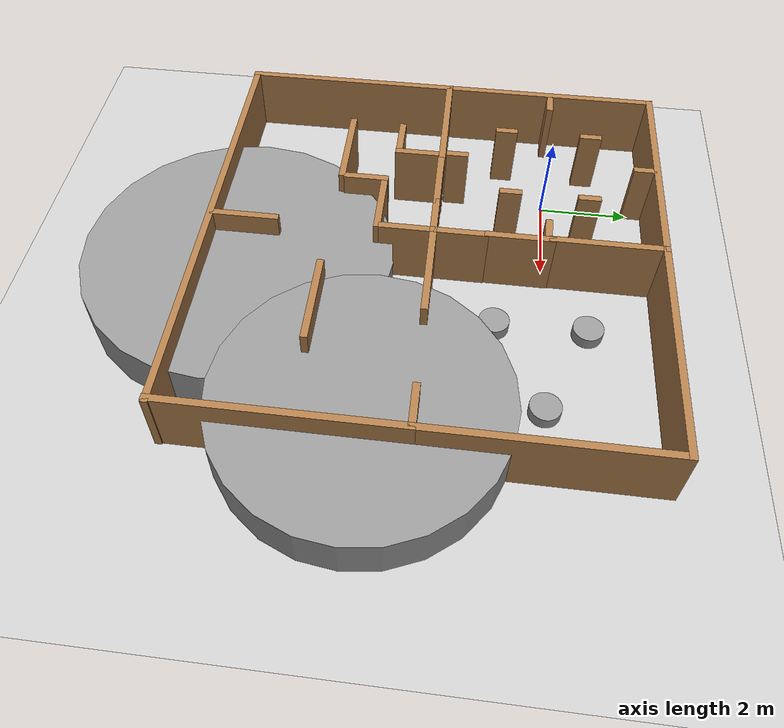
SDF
<sdf version="1.6">
 <world name="default">
  <light name="sun" type="directional">
   <pose>0 0 10 0 -0 0</pose>
   <diffuse>0.8 0.8 0.8 1</diffuse>
   <specular>0.2 0.2 0.2 1</specular>
   <attenuation>
    <range>1000</range>
    <constant>0.9</constant>
    <linear>0.01</linear>
    <quadratic>0.001</quadratic>
   </attenuation>
   <direction>-0.5 0.1 -0.9</direction>
  </light>
  <model name="ground_plane">
   <static>1</static>
   <link name="link">
    <collision name="collision">
     <geometry><plane><normal>0 0 1</normal><size>100 100</size></plane></geometry>
     <surface><friction><ode><mu>100</mu><mu2>50</mu2></ode></friction></surface>
    </collision>
    <visual name="visual">
     <cast_shadows>0</cast_shadows>
     <geometry><plane><normal>0 0 1</normal><size>100 100</size></plane></geometry>
     <material>
      <script><uri>file://media/materials/scripts/gazebo.material</uri><name>Gazebo/Grey</name></script>
     </material>
    </visual>
   </link>
  </model>
  <physics name="default_physics" default="0" type="ode">
   <real_time_update_rate>1000</real_time_update_rate>
   <max_step_size>0.001</max_step_size>
   <real_time_factor>1</real_time_factor>
   <ode>
    <solver>
     <type>quick</type>
     <iters>150</iters>
     <precon_iters>0</precon_iters>
     <sor>1.4</sor>
     <use_dynamic_moi_rescaling>1</use_dynamic_moi_rescaling>
    </solver>
    <constraints>
     <cfm>1e-05</cfm>
     <erp>0.2</erp>
     <contact_max_correcting_vel>2000</contact_max_correcting_vel>
     <contact_surface_layer>0.01</contact_surface_layer>
    </constraints>
   </ode>
  </physics>
  <scene><ambient>0.4 0.4 0.4 1</ambient><background>0.7 0.7 0.7 1</background><shadows>1</shadows></scene>
  <gravity>0 0 -9.8</gravity>
  <magnetic_field>6e-06 2.3e-05 -4.2e-05</magnetic_field>
  <atmosphere type="adiabatic"/>
  <spherical_coordinates>
   <surface_model>EARTH_WGS84</surface_model>
   <latitude_deg>0</latitude_deg>
   <longitude_deg>0</longitude_deg>
   <elevation>0</elevation>
   <heading_deg>0</heading_deg>
  </spherical_coordinates>
  <audio><device>default</device></audio>
  <model name="new_envi">
   <pose>2.36889 -2.44064 0 0 -0 0</pose>
   <link name="Wall_14">
    <collision name="Wall_14_Collision">
     <geometry><box><size>5 0.15 1.5</size></box></geometry>
     <pose>0 0 0.75 0 -0 0</pose>
    </collision>
    <visual name="Wall_14_Visual">
     <pose>0 0 0.75 0 -0 0</pose>
     <geometry><box><size>5 0.15 1.5</size></box></geometry>
     <material>
      <script><uri>file://media/materials/scripts/gazebo.material</uri><name>Gazebo/Wood</name></script>
      <ambient>1 1 1 1</ambient>
     </material>
     <meta><layer>0</layer></meta>
    </visual>
    <pose>-2.439 4.85 0 0 -0 0</pose>
   </link>
   <link name="Wall_16">
    <collision name="Wall_16_Collision">
     <geometry><box><size>5 0.15 1.5</size></box></geometry>
     <pose>0 0 0.75 0 -0 0</pose>
    </collision>
    <visual name="Wall_16_Visual">
     <pose>0 0 0.75 0 -0 0</pose>
     <geometry><box><size>5 0.15 1.5</size></box></geometry>
     <material>
      <script><uri>file://media/materials/scripts/gazebo.material</uri><name>Gazebo/Wood</name></script>
      <ambient>1 1 1 1</ambient>
     </material>
     <meta><layer>0</layer></meta>
    </visual>
    <pose>-4.864 2.425 0 0 -0 -1.5708</pose>
   </link>
   <link name="Wall_18">
    <collision name="Wall_18_Collision">
     <geometry><box><size>3 0.15 1.5</size></box></geometry>
     <pose>0 0 0.75 0 -0 0</pose>
    </collision>
    <visual name="Wall_18_Visual">
     <pose>0 0 0.75 0 -0 0</pose>
     <geometry><box><size>3 0.15 1.5</size></box></geometry>
     <material>
      <script><uri>file://media/materials/scripts/gazebo.material</uri><name>Gazebo/Wood</name></script>
      <ambient>1 1 1 1</ambient>
     </material>
     <meta><layer>0</layer></meta>
    </visual>
    <pose>-3.439 -0 0 0 -0 0</pose>
   </link>
   <link name="Wall_20">
    <collision name="Wall_20_Collision">
     <geometry><box><size>2.5 0.15 1.5</size></box></geometry>
     <pose>0 0 0.75 0 -0 0</pose>
    </collision>
    <visual name="Wall_20_Visual">
     <pose>0 0 0.75 0 -0 0</pose>
     <geometry><box><size>2.5 0.15 1.5</size></box></geometry>
     <material>
      <script><uri>file://media/materials/scripts/gazebo.material</uri><name>Gazebo/Wood</name></script>
      <ambient>1 1 1 1</ambient>
     </material>
     <meta><layer>0</layer></meta>
    </visual>
    <pose>-0.014 3.675 0 0 -0 -1.5708</pose>
   </link>
   <link name="Wall_22">
    <collision name="Wall_22_Collision">
     <geometry><box><size>1.25 0.15 1.5</size></box></geometry>
     <pose>0 0 0.75 0 -0 0</pose>
    </collision>
    <visual name="Wall_22_Visual">
     <pose>0 0 0.75 0 -0 0</pose>
     <geometry><box><size>1.25 0.15 1.5</size></box></geometry>
     <material>
      <script><uri>file://media/materials/scripts/gazebo.material</uri><name>Gazebo/Wood</name></script>
      <ambient>1 1 1 1</ambient>
     </material>
     <meta><layer>0</layer></meta>
    </visual>
    <pose>0.019 0.537 0 0 -0 -1.5708</pose>
   </link>
   <link name="Wall_23">
    <collision name="Wall_23_Collision">
     <geometry><box><size>1 0.15 1.5</size></box></geometry>
     <pose>0 0 0.75 0 -0 0</pose>
    </collision>
    <visual name="Wall_23_Visual">
     <pose>0 0 0.75 0 -0 0</pose>
     <geometry><box><size>1 0.15 1.5</size></box></geometry>
     <material>
      <script><uri>file://media/materials/scripts/gazebo.material</uri><name>Gazebo/Wood</name></script>
      <ambient>1 1 1 1</ambient>
     </material>
     <meta><layer>0</layer></meta>
    </visual>
    <pose>-0.406 -0.013 0 0 -0 3.14159</pose>
   </link>
   <link name="Wall_27">
    <collision name="Wall_27_Collision">
     <geometry><box><size>5 0.15 1.5</size></box></geometry>
     <pose>0 0 0.75 0 -0 0</pose>
    </collision>
    <visual name="Wall_27_Visual">
     <pose>0 0 0.75 0 -0 0</pose>
     <geometry><box><size>5 0.15 1.5</size></box></geometry>
     <material>
      <script><uri>file://media/materials/scripts/gazebo.material</uri><name>Gazebo/Wood</name></script>
      <ambient>1 1 1 1</ambient>
     </material>
     <meta><layer>0</layer></meta>
    </visual>
    <pose>2.411 4.85 0 0 -0 0</pose>
   </link>
   <link name="Wall_28">
    <collision name="Wall_28_Collision">
     <geometry><box><size>5 0.15 1.5</size></box></geometry>
     <pose>0 0 0.75 0 -0 0</pose>
    </collision>
    <visual name="Wall_28_Visual">
     <pose>0 0 0.75 0 -0 0</pose>
     <geometry><box><size>5 0.15 1.5</size></box></geometry>
     <material>
      <script><uri>file://media/materials/scripts/gazebo.material</uri><name>Gazebo/Wood</name></script>
      <ambient>1 1 1 1</ambient>
     </material>
     <meta><layer>0</layer></meta>
    </visual>
    <pose>4.836 2.425 0 0 -0 -1.5708</pose>
   </link>
   <link name="Wall_29">
    <collision name="Wall_29_Collision">
     <geometry><box><size>1 0.15 1.5</size></box></geometry>
     <pose>0 0 0.75 0 -0 0</pose>
    </collision>
    <visual name="Wall_29_Visual">
     <pose>0 0 0.75 0 -0 0</pose>
     <geometry><box><size>1 0.15 1.5</size></box></geometry>
     <material>
      <script><uri>file://media/materials/scripts/gazebo.material</uri><name>Gazebo/Wood</name></script>
      <ambient>1 1 1 1</ambient>
     </material>
     <meta><layer>0</layer></meta>
    </visual>
    <pose>4.411 -0 0 0 -0 3.14159</pose>
   </link>
   <link name="Wall_31">
    <collision name="Wall_31_Collision">
     <geometry><box><size>2.25 0.15 1.5</size></box></geometry>
     <pose>0 0 0.75 0 -0 0</pose>
    </collision>
    <visual name="Wall_31_Visual">
     <pose>0 0 0.75 0 -0 0</pose>
     <geometry><box><size>2.25 0.15 1.5</size></box></geometry>
     <material>
      <script><uri>file://media/materials/scripts/gazebo.material</uri><name>Gazebo/Wood</name></script>
      <ambient>1 1 1 1</ambient>
     </material>
     <meta><layer>0</layer></meta>
    </visual>
    <pose>1.069 -0.013 0 0 -0 0</pose>
   </link>
   <link name="Wall_35">
    <collision name="Wall_35_Collision">
     <geometry><box><size>9.75 0.15 1.5</size></box></geometry>
     <pose>0 0 0.75 0 -0 0</pose>
    </collision>
    <visual name="Wall_35_Visual">
     <pose>0 0 0.75 0 -0 0</pose>
     <geometry><box><size>9.75 0.15 1.5</size></box></geometry>
     <material>
      <script><uri>file://media/materials/scripts/gazebo.material</uri><name>Gazebo/Wood</name></script>
      <ambient>1 1 1 1</ambient>
     </material>
     <meta><layer>0</layer></meta>
    </visual>
    <pose>0.064 -4.835 0 0 -0 0</pose>
   </link>
   <link name="Wall_37">
    <collision name="Wall_37_Collision">
     <geometry><box><size>5 0.15 1.5</size></box></geometry>
     <pose>0 0 0.75 0 -0 0</pose>
    </collision>
    <visual name="Wall_37_Visual">
     <pose>0 0 0.75 0 -0 0</pose>
     <geometry><box><size>5 0.15 1.5</size></box></geometry>
     <material>
      <script><uri>file://media/materials/scripts/gazebo.material</uri><name>Gazebo/Wood</name></script>
      <ambient>1 1 1 1</ambient>
     </material>
     <meta><layer>0</layer></meta>
    </visual>
    <pose>4.836 -2.425 0 0 -0 -1.5708</pose>
   </link>
   <link name="Wall_39">
    <collision name="Wall_39_Collision">
     <geometry><box><size>5 0.15 1.5</size></box></geometry>
     <pose>0 0 0.75 0 -0 0</pose>
    </collision>
    <visual name="Wall_39_Visual">
     <pose>0 0 0.75 0 -0 0</pose>
     <geometry><box><size>5 0.15 1.5</size></box></geometry>
     <material>
      <script><uri>file://media/materials/scripts/gazebo.material</uri><name>Gazebo/Wood</name></script>
      <ambient>1 1 1 1</ambient>
     </material>
     <meta><layer>0</layer></meta>
    </visual>
    <pose>-4.864 -2.425 0 0 -0 -1.5708</pose>
   </link>
   <link name="Wall_41">
    <collision name="Wall_41_Collision">
     <geometry><box><size>1.25 0.15 1.5</size></box></geometry>
     <pose>0 0 0.75 0 -0 0</pose>
    </collision>
    <visual name="Wall_41_Visual">
     <pose>0 0 0.75 0 -0 0</pose>
     <geometry><box><size>1.25 0.15 1.5</size></box></geometry>
     <material>
      <script><uri>file://media/materials/scripts/gazebo.material</uri><name>Gazebo/Wood</name></script>
      <ambient>1 1 1 1</ambient>
     </material>
     <meta><layer>0</layer></meta>
    </visual>
    <pose>0.019 -0.563 0 0 -0 -1.5708</pose>
   </link>
   <link name="Wall_43">
    <collision name="Wall_43_Collision">
     <geometry><box><size>1.5 0.15 1.5</size></box></geometry>
     <pose>0 0 0.75 0 -0 0</pose>
    </collision>
    <visual name="Wall_43_Visual">
     <pose>0 0 0.75 0 -0 0</pose>
     <geometry><box><size>1.5 0.15 1.5</size></box></geometry>
     <material>
      <script><uri>file://media/materials/scripts/gazebo.material</uri><name>Gazebo/Wood</name></script>
      <ambient>1 1 1 1</ambient>
     </material>
     <meta><layer>0</layer></meta>
    </visual>
    <pose>0.064 -4.086 0 0 -0 -1.5708</pose>
   </link>
   <static>1</static>
  </model>
  <model name="c0">
   <link name="link">
    <inertial>
     <mass>1</mass>
     <inertia><ixx>0.145833</ixx><ixy>0</ixy><ixz>0</ixz><iyy>0.145833</iyy><iyz>0</iyz><izz>0.125</izz></inertia>
    </inertial>
    <visual name="visual">
     <geometry><cylinder><radius>0.326555</radius><length>0.51474</length></cylinder></geometry>
     <material>
      <script><name>Gazebo/Grey</name><uri>file://media/materials/scripts/gazebo.material</uri></script>
     </material>
    </visual>
    <collision name="collision">
     <geometry><cylinder><radius>0.326555</radius><length>0.51474</length></cylinder></geometry>
     <surface>
      <friction>
       <ode><mu>1</mu><mu2>1</mu2><fdir1>0 0 0</fdir1><slip1>0</slip1><slip2>0</slip2></ode>
       <torsional>
        <coefficient>1</coefficient>
        <patch_radius>0</patch_radius>
        <surface_radius>0</surface_radius>
        <use_patch_radius>1</use_patch_radius>
        <ode><slip>0</slip></ode>
       </torsional>
      </friction>
      <bounce><restitution_coefficient>0</restitution_coefficient><threshold>1e+06</threshold></bounce>
      <contact>
       <collide_without_contact>0</collide_without_contact>
       <collide_without_contact_bitmask>1</collide_without_contact_bitmask>
       <collide_bitmask>1</collide_bitmask>
       <ode>
        <soft_cfm>0</soft_cfm>
        <soft_erp>0.2</soft_erp>
        <kp>1e+13</kp>
        <kd>1</kd>
        <max_vel>0.01</max_vel>
        <min_depth>0</min_depth>
       </ode>
       <bullet>
        <split_impulse>1</split_impulse>
        <split_impulse_penetration_threshold>-0.01</split_impulse_penetration_threshold>
        <soft_cfm>0</soft_cfm>
        <soft_erp>0.2</soft_erp>
        <kp>1e+13</kp>
        <kd>1</kd>
       </bullet>
      </contact>
     </surface>
    </collision>
   </link>
   <static>1</static>
   <pose>5.70012 0.083019 0 0 -0 0</pose>
  </model>
  <model name="c0_0">
   <link name="link">
    <inertial>
     <mass>1</mass>
     <inertia><ixx>0.145833</ixx><ixy>0</ixy><ixz>0</ixz><iyy>0.145833</iyy><iyz>0</iyz><izz>0.125</izz></inertia>
    </inertial>
    <visual name="visual">
     <geometry><cylinder><radius>0.326555</radius><length>0.51474</length></cylinder></geometry>
     <material>
      <script><name>Gazebo/Grey</name><uri>file://media/materials/scripts/gazebo.material</uri></script>
     </material>
    </visual>
    <collision name="collision">
     <geometry><cylinder><radius>0.326555</radius><length>0.51474</length></cylinder></geometry>
     <surface>
      <friction>
       <ode><mu>1</mu><mu2>1</mu2><fdir1>0 0 0</fdir1><slip1>0</slip1><slip2>0</slip2></ode>
       <torsional>
        <coefficient>1</coefficient>
        <patch_radius>0</patch_radius>
        <surface_radius>0</surface_radius>
        <use_patch_radius>1</use_patch_radius>
        <ode><slip>0</slip></ode>
       </torsional>
      </friction>
      <bounce><restitution_coefficient>0</restitution_coefficient><threshold>1e+06</threshold></bounce>
      <contact>
       <collide_without_contact>0</collide_without_contact>
       <collide_without_contact_bitmask>1</collide_without_contact_bitmask>
       <collide_bitmask>1</collide_bitmask>
       <ode>
        <soft_cfm>0</soft_cfm>
        <soft_erp>0.2</soft_erp>
        <kp>1e+13</kp>
        <kd>1</kd>
        <max_vel>0.01</max_vel>
        <min_depth>0</min_depth>
       </ode>
       <bullet>
        <split_impulse>1</split_impulse>
        <split_impulse_penetration_threshold>-0.01</split_impulse_penetration_threshold>
        <soft_cfm>0</soft_cfm>
        <soft_erp>0.2</soft_erp>
        <kp>1e+13</kp>
        <kd>1</kd>
       </bullet>
      </contact>
     </surface>
    </collision>
   </link>
   <static>1</static>
   <pose>3.67678 -0.998554 0 0 -0 0</pose>
  </model>
  <model name="c0_2">
   <link name="link">
    <inertial>
     <mass>1</mass>
     <inertia><ixx>0.145833</ixx><ixy>0</ixy><ixz>0</ixz><iyy>0.145833</iyy><iyz>0</iyz><izz>0.125</izz></inertia>
    </inertial>
    <visual name="visual">
     <geometry><cylinder><radius>0.326555</radius><length>0.51474</length></cylinder></geometry>
     <material>
      <script><name>Gazebo/Grey</name><uri>file://media/materials/scripts/gazebo.material</uri></script>
     </material>
    </visual>
    <collision name="collision">
     <geometry><cylinder><radius>0.326555</radius><length>0.51474</length></cylinder></geometry>
     <surface>
      <friction>
       <ode><mu>1</mu><mu2>1</mu2><fdir1>0 0 0</fdir1><slip1>0</slip1><slip2>0</slip2></ode>
       <torsional>
        <coefficient>1</coefficient>
        <patch_radius>0</patch_radius>
        <surface_radius>0</surface_radius>
        <use_patch_radius>1</use_patch_radius>
        <ode><slip>0</slip></ode>
       </torsional>
      </friction>
      <bounce><restitution_coefficient>0</restitution_coefficient><threshold>1e+06</threshold></bounce>
      <contact>
       <collide_without_contact>0</collide_without_contact>
       <collide_without_contact_bitmask>1</collide_without_contact_bitmask>
       <collide_bitmask>1</collide_bitmask>
       <ode>
        <soft_cfm>0</soft_cfm>
        <soft_erp>0.2</soft_erp>
        <kp>1e+13</kp>
        <kd>1</kd>
        <max_vel>0.01</max_vel>
        <min_depth>0</min_depth>
       </ode>
       <bullet>
        <split_impulse>1</split_impulse>
        <split_impulse_penetration_threshold>-0.01</split_impulse_penetration_threshold>
        <soft_cfm>0</soft_cfm>
        <soft_erp>0.2</soft_erp>
        <kp>1e+13</kp>
        <kd>1</kd>
       </bullet>
      </contact>
     </surface>
    </collision>
   </link>
   <static>1</static>
   <pose>3.66158 0.979241 0 0 -0 0</pose>
  </model>
  <model name="woll_ho">
   <pose>1.71026 -3.65564 0 0 -0 0</pose>
   <link name="Wall_47">
    <collision name="Wall_47_Collision">
     <geometry><box><size>1.5 0.15 1.5</size></box></geometry>
     <pose>0 0 0.75 0 -0 0</pose>
    </collision>
    <visual name="Wall_47_Visual">
     <pose>0 0 0.75 0 -0 0</pose>
     <geometry><box><size>1.5 0.15 1.5</size></box></geometry>
     <material>
      <script><uri>file://media/materials/scripts/gazebo.material</uri><name>Gazebo/Wood</name></script>
      <ambient>1 1 1 1</ambient>
     </material>
     <meta><layer>0</layer></meta>
    </visual>
    <pose>0 0 0 0 -0 3.14159</pose>
   </link>
   <static>1</static>
  </model>
  <model name="wall_v">
   <pose>-0.02525 -4.62227 0 0 -0 0</pose>
   <link name="Wall_43">
    <collision name="Wall_43_Collision">
     <geometry><box><size>2 0.15 1.5</size></box></geometry>
     <pose>0 0 0.75 0 -0 0</pose>
    </collision>
    <visual name="Wall_43_Visual">
     <pose>0 0 0.75 0 -0 0</pose>
     <geometry><box><size>2 0.15 1.5</size></box></geometry>
     <material>
      <script><uri>file://media/materials/scripts/gazebo.material</uri><name>Gazebo/Wood</name></script>
      <ambient>1 1 1 1</ambient>
     </material>
     <meta><layer>0</layer></meta>
    </visual>
   </link>
   <static>1</static>
  </model>
  <model name="HO">
   <pose>0.940383 -4.0765 0 0 -0 0</pose>
   <link name="Wall_54">
    <collision name="Wall_54_Collision">
     <geometry><box><size>1 0.15 1.5</size></box></geometry>
     <pose>0 0 0.75 0 -0 0</pose>
    </collision>
    <visual name="Wall_54_Visual">
     <pose>0 0 0.75 0 -0 0</pose>
     <geometry><box><size>1 0.15 1.5</size></box></geometry>
     <material>
      <script><uri>file://media/materials/scripts/gazebo.material</uri><name>Gazebo/Wood</name></script>
      <ambient>1 1 1 1</ambient>
     </material>
     <meta><layer>0</layer></meta>
    </visual>
    <pose>0 0 0 0 -0 -1.5708</pose>
   </link>
   <static>1</static>
  </model>
  <model name="HO_5">
   <pose>-0.01716 -3.01957 0 0 -0 0</pose>
   <link name="Wall_54">
    <collision name="Wall_54_Collision">
     <geometry><box><size>1 0.15 1.5</size></box></geometry>
     <pose>0 0 0.75 0 -0 0</pose>
    </collision>
    <visual name="Wall_54_Visual">
     <pose>0 0 0.75 0 -0 0</pose>
     <geometry><box><size>1 0.15 1.5</size></box></geometry>
     <material>
      <script><uri>file://media/materials/scripts/gazebo.material</uri><name>Gazebo/Wood</name></script>
      <ambient>1 1 1 1</ambient>
     </material>
     <meta><layer>0</layer></meta>
    </visual>
    <pose>0 0 0 0 -0 -1.5708</pose>
   </link>
   <static>1</static>
  </model>
  <model name="V_2">
   <pose>-0.468482 -3.43941 0 0 -0 0</pose>
   <link name="Wall_48">
    <collision name="Wall_48_Collision">
     <geometry><box><size>1 0.15 1.5</size></box></geometry>
     <pose>0 0 0.75 0 -0 0</pose>
    </collision>
    <visual name="Wall_48_Visual">
     <pose>0 0 0.75 0 -0 0</pose>
     <geometry><box><size>1 0.15 1.5</size></box></geometry>
     <material>
      <script><uri>file://media/materials/scripts/gazebo.material</uri><name>Gazebo/Wood</name></script>
      <ambient>1 1 1 1</ambient>
     </material>
     <meta><layer>0</layer></meta>
    </visual>
   </link>
   <static>1</static>
  </model>
  <model name="wall_v_0">
   <pose>4.52756 -4.67997 0 0 -0 0</pose>
   <link name="Wall_43">
    <collision name="Wall_43_Collision">
     <geometry><box><size>2 0.15 1.5</size></box></geometry>
     <pose>0 0 0.75 0 -0 0</pose>
    </collision>
    <visual name="Wall_43_Visual">
     <pose>0 0 0.75 0 -0 0</pose>
     <geometry><box><size>2 0.15 1.5</size></box></geometry>
     <material>
      <script><uri>file://media/materials/scripts/gazebo.material</uri><name>Gazebo/Wood</name></script>
      <ambient>1 1 1 1</ambient>
     </material>
     <meta><layer>0</layer></meta>
    </visual>
   </link>
   <static>1</static>
  </model>
  <model name="unit_cylinder">
   <pose>6.36435 -3.47038 0.5 0 -0 4.2e-05</pose>
   <link name="link">
    <inertial>
     <mass>1</mass>
     <inertia><ixx>0.145833</ixx><ixy>0</ixy><ixz>0</ixz><iyy>0.145833</iyy><iyz>0</iyz><izz>0.125</izz></inertia>
    </inertial>
    <collision name="collision">
     <geometry><cylinder><radius>2.99513</radius><length>1</length></cylinder></geometry>
    </collision>
    <visual name="visual">
     <geometry><cylinder><radius>2.99513</radius><length>1</length></cylinder></geometry>
     <material>
      <script><name>Gazebo/Grey</name><uri>file://media/materials/scripts/gazebo.material</uri></script>
     </material>
    </visual>
   </link>
  </model>
  <model name="unit_cylinder_0">
   <pose>3.02222 -6.58528 0.49999 -8e-06 8e-06 1.9e-05</pose>
   <link name="link">
    <inertial>
     <mass>1</mass>
     <inertia><ixx>0.145833</ixx><ixy>0</ixy><ixz>0</ixz><iyy>0.145833</iyy><iyz>0</iyz><izz>0.125</izz></inertia>
    </inertial>
    <collision name="collision">
     <geometry><cylinder><radius>3.34934</radius><length>1</length></cylinder></geometry>
    </collision>
    <visual name="visual">
     <geometry><cylinder><radius>3.34934</radius><length>1</length></cylinder></geometry>
     <material>
      <script><name>Gazebo/Grey</name><uri>file://media/materials/scripts/gazebo.material</uri></script>
     </material>
    </visual>
   </link>
  </model>
  <model name="woll_h">
   <pose>2.37328 -0.619041 0 0 -0 0</pose>
   <link name="Wall_45">
    <collision name="Wall_45_Collision">
     <geometry><box><size>1.5 0.15 1.5</size></box></geometry>
     <pose>0 0 0.75 0 -0 0</pose>
    </collision>
    <visual name="Wall_45_Visual">
     <pose>0 0 0.75 0 -0 0</pose>
     <geometry><box><size>1.5 0.15 1.5</size></box></geometry>
     <material>
      <script><uri>file://media/materials/scripts/gazebo.material</uri><name>Gazebo/Wood</name></script>
      <ambient>1 1 1 1</ambient>
     </material>
     <meta><layer>0</layer></meta>
    </visual>
    <pose>0 0 0 0 -0 1.5708</pose>
   </link>
   <static>1</static>
  </model>
  <model name="woll_ho_0">
   <pose>0.848718 -2.45317 0 0 -0 0</pose>
   <link name="Wall_47">
    <collision name="Wall_47_Collision">
     <geometry><box><size>1.5 0.15 1.5</size></box></geometry>
     <pose>0 0 0.75 0 -0 0</pose>
    </collision>
    <visual name="Wall_47_Visual">
     <pose>0 0 0.75 0 -0 0</pose>
     <geometry><box><size>1.5 0.15 1.5</size></box></geometry>
     <material>
      <script><uri>file://media/materials/scripts/gazebo.material</uri><name>Gazebo/Wood</name></script>
      <ambient>1 1 1 1</ambient>
     </material>
     <meta><layer>0</layer></meta>
    </visual>
    <pose>0 0 0 0 -0 3.14159</pose>
   </link>
   <static>1</static>
  </model>
  <light name="user_point_light_0" type="point">
   <pose>2.24604 2.39758 1 0 -0 0</pose>
   <diffuse>0.5 0.5 0.5 1</diffuse>
   <specular>0.1 0.1 0.1 1</specular>
   <attenuation>
    <range>20</range>
    <constant>0.5</constant>
    <linear>0.01</linear>
    <quadratic>0.001</quadratic>
   </attenuation>
   <cast_shadows>0</cast_shadows>
   <direction>0 0 -1</direction>
  </light>
  <model name="litlle">
   <pose>1.02594 -0.853853 0 0 -0 0</pose>
   <link name="Wall_4">
    <collision name="Wall_4_Collision">
     <geometry><box><size>0.5 0.15 1.5</size></box></geometry>
     <pose>0 0 0.75 0 -0 0</pose>
    </collision>
    <visual name="Wall_4_Visual">
     <pose>0 0 0.75 0 -0 0</pose>
     <geometry><box><size>0.5 0.15 1.5</size></box></geometry>
     <material>
      <script><uri>file://media/materials/scripts/gazebo.material</uri><name>Gazebo/Wood</name></script>
      <ambient>1 1 1 1</ambient>
     </material>
     <meta><layer>0</layer></meta>
    </visual>
    <pose>0 0 0 0 -0 -1.5708</pose>
   </link>
   <static>1</static>
  </model>
  <model name="litlle_0">
   <pose>1.02628 0.873399 0 0 -0 0</pose>
   <link name="Wall_4">
    <collision name="Wall_4_Collision">
     <geometry><box><size>0.5 0.15 1.5</size></box></geometry>
     <pose>0 0 0.75 0 -0 0</pose>
    </collision>
    <visual name="Wall_4_Visual">
     <pose>0 0 0.75 0 -0 0</pose>
     <geometry><box><size>0.5 0.15 1.5</size></box></geometry>
     <material>
      <script><uri>file://media/materials/scripts/gazebo.material</uri><name>Gazebo/Wood</name></script>
      <ambient>1 1 1 1</ambient>
     </material>
     <meta><layer>0</layer></meta>
    </visual>
    <pose>0 0 0 0 -0 -1.5708</pose>
   </link>
   <static>1</static>
  </model>
  <model name="litlle_1">
   <pose>-0.069332 -2.09393 0 0 -0 0</pose>
   <link name="Wall_4">
    <collision name="Wall_4_Collision">
     <geometry><box><size>0.5 0.15 1.5</size></box></geometry>
     <pose>0 0 0.75 0 -0 0</pose>
    </collision>
    <visual name="Wall_4_Visual">
     <pose>0 0 0.75 0 -0 0</pose>
     <geometry><box><size>0.5 0.15 1.5</size></box></geometry>
     <material>
      <script><uri>file://media/materials/scripts/gazebo.material</uri><name>Gazebo/Wood</name></script>
      <ambient>1 1 1 1</ambient>
     </material>
     <meta><layer>0</layer></meta>
    </visual>
    <pose>0 0 0 0 -0 -1.5708</pose>
   </link>
   <static>1</static>
  </model>
  <model name="litlle_2">
   <pose>-0.029778 2.13516 0 0 -0 0</pose>
   <link name="Wall_4">
    <collision name="Wall_4_Collision">
     <geometry><box><size>0.5 0.15 1.5</size></box></geometry>
     <pose>0 0 0.75 0 -0 0</pose>
    </collision>
    <visual name="Wall_4_Visual">
     <pose>0 0 0.75 0 -0 0</pose>
     <geometry><box><size>0.5 0.15 1.5</size></box></geometry>
     <material>
      <script><uri>file://media/materials/scripts/gazebo.material</uri><name>Gazebo/Wood</name></script>
      <ambient>1 1 1 1</ambient>
     </material>
     <meta><layer>0</layer></meta>
    </visual>
    <pose>0 0 0 0 -0 -1.5708</pose>
   </link>
   <static>1</static>
  </model>
  <model name="litlle_3">
   <pose>-1.03303 -0.992082 0 0 -0 0</pose>
   <link name="Wall_4">
    <collision name="Wall_4_Collision">
     <geometry><box><size>0.5 0.15 1.5</size></box></geometry>
     <pose>0 0 0.75 0 -0 0</pose>
    </collision>
    <visual name="Wall_4_Visual">
     <pose>0 0 0.75 0 -0 0</pose>
     <geometry><box><size>0.5 0.15 1.5</size></box></geometry>
     <material>
      <script><uri>file://media/materials/scripts/gazebo.material</uri><name>Gazebo/Wood</name></script>
      <ambient>1 1 1 1</ambient>
     </material>
     <meta><layer>0</layer></meta>
    </visual>
    <pose>0 0 0 0 -0 -1.5708</pose>
   </link>
   <static>1</static>
  </model>
  <model name="litlle_4">
   <pose>-1.03912 0.963382 0 0 -0 0</pose>
   <link name="Wall_4">
    <collision name="Wall_4_Collision">
     <geometry><box><size>0.5 0.15 1.5</size></box></geometry>
     <pose>0 0 0.75 0 -0 0</pose>
    </collision>
    <visual name="Wall_4_Visual">
     <pose>0 0 0.75 0 -0 0</pose>
     <geometry><box><size>0.5 0.15 1.5</size></box></geometry>
     <material>
      <script><uri>file://media/materials/scripts/gazebo.material</uri><name>Gazebo/Wood</name></script>
      <ambient>1 1 1 1</ambient>
     </material>
     <meta><layer>0</layer></meta>
    </visual>
    <pose>0 0 0 0 -0 -1.5708</pose>
   </link>
   <static>1</static>
  </model>
  <model name="litlle_5">
   <pose>-2.16869 0.022754 0 0 0 -1.58946</pose>
   <link name="Wall_4">
    <collision name="Wall_4_Collision">
     <geometry><box><size>0.5 0.15 1.5</size></box></geometry>
     <pose>0 0 0.75 0 -0 0</pose>
    </collision>
    <visual name="Wall_4_Visual">
     <pose>0 0 0.75 0 -0 0</pose>
     <geometry><box><size>0.5 0.15 1.5</size></box></geometry>
     <material>
      <script><uri>file://media/materials/scripts/gazebo.material</uri><name>Gazebo/Wood</name></script>
      <ambient>1 1 1 1</ambient>
     </material>
     <meta><layer>0</layer></meta>
    </visual>
    <pose>0 0 0 0 -0 -1.5708</pose>
   </link>
   <static>1</static>
  </model>
  <model name="litlle_6">
   <pose>2.04973 -0.02006 0 0 0 -1.60116</pose>
   <link name="Wall_4">
    <collision name="Wall_4_Collision">
     <geometry><box><size>0.5 0.15 1.5</size></box></geometry>
     <pose>0 0 0.75 0 -0 0</pose>
    </collision>
    <visual name="Wall_4_Visual">
     <pose>0 0 0.75 0 -0 0</pose>
     <geometry><box><size>0.5 0.15 1.5</size></box></geometry>
     <material>
      <script><uri>file://media/materials/scripts/gazebo.material</uri><name>Gazebo/Wood</name></script>
      <ambient>1 1 1 1</ambient>
     </material>
     <meta><layer>0</layer></meta>
    </visual>
    <pose>0 0 0 0 -0 -1.5708</pose>
   </link>
   <static>1</static>
  </model>
 </world>
</sdf>
